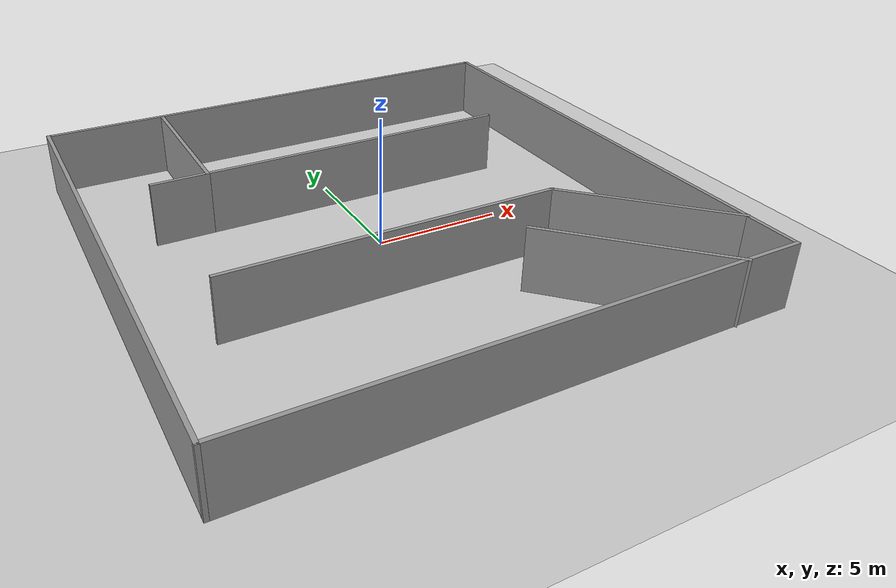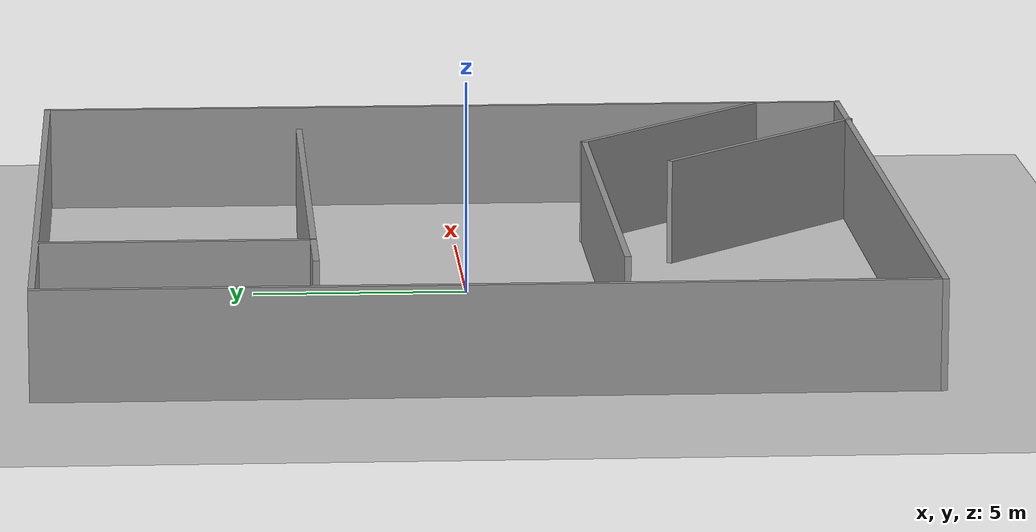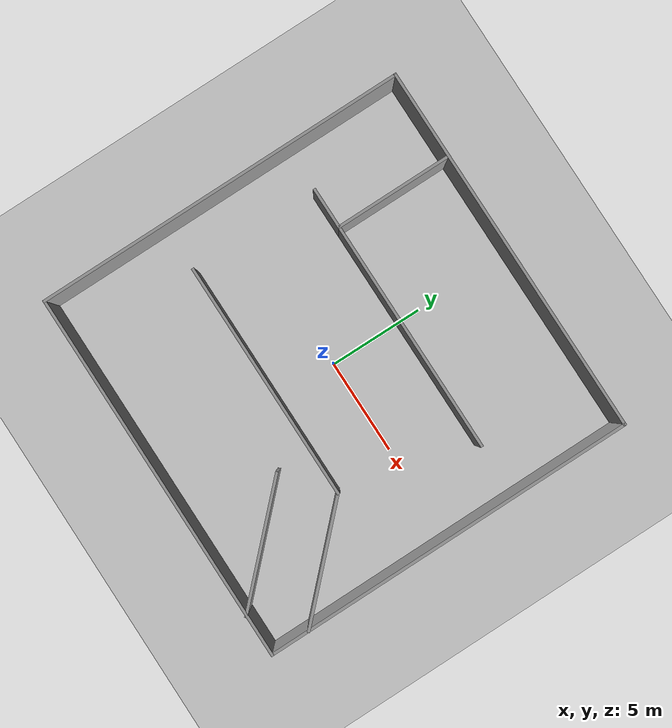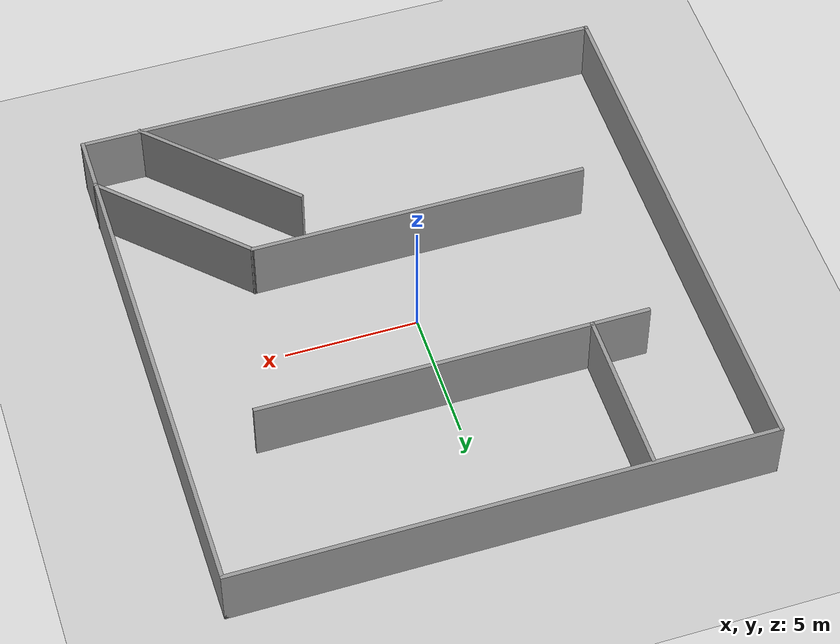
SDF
<?xml version="1.0" ?>

<sdf version="1.6">
	<world name="default">
		<!-- Uncomment this for tracking the robot -->
		<!-- Comment this for manually changing the camera-->
		<include>
			<uri>model://sun</uri>
            <pose>0 0 100 0 0 0</pose>
		</include>

		<include>
			<uri>model://ground_plane</uri>
		</include>

		<include>
			<uri>model://house_2_2</uri>
			<pose>0 0 0 0 0 0</pose>
		</include>

	</world>
</sdf>

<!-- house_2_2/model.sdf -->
<sdf version='1.6'>
  <model name='house_2'>
    <pose frame=''>0.007217 0.020634 0 0 -0 0</pose>
    <link name='Wall_10'>
      <collision name='Wall_10_Collision'>
        <geometry>
          <box>
            <size>20 0.15 2.5</size>
          </box>
        </geometry>
        <pose frame=''>0 0 1.25 0 -0 0</pose>
      </collision>
      <visual name='Wall_10_Visual'>
        <pose frame=''>0 0 1.25 0 -0 0</pose>
        <geometry>
          <box>
            <size>20 0.15 2.5</size>
          </box>
        </geometry>
        <material>
          <script>
            <uri>file://media/materials/scripts/gazebo.material</uri>
            <name>Gazebo/Grey</name>
          </script>
          <ambient>1 1 1 1</ambient>
        </material>
        <meta>
          <layer>0</layer>
        </meta>
      </visual>
      <pose frame=''>-0.014738 -9.89248 0 0 -0 3.14159</pose>
    </link>
    <link name='Wall_11'>
      <collision name='Wall_11_Collision'>
        <geometry>
          <box>
            <size>20 0.15 2.5</size>
          </box>
        </geometry>
        <pose frame=''>0 0 1.25 0 -0 0</pose>
      </collision>
      <visual name='Wall_11_Visual'>
        <pose frame=''>0 0 1.25 0 -0 0</pose>
        <geometry>
          <box>
            <size>20 0.15 2.5</size>
          </box>
        </geometry>
        <material>
          <script>
            <uri>file://media/materials/scripts/gazebo.material</uri>
            <name>Gazebo/Grey</name>
          </script>
          <ambient>1 1 1 1</ambient>
        </material>
        <meta>
          <layer>0</layer>
        </meta>
      </visual>
      <pose frame=''>-9.93974 0.032517 0 0 -0 1.5708</pose>
    </link>
    <link name='Wall_13'>
      <collision name='Wall_13_Collision'>
        <geometry>
          <box>
            <size>6.25 0.15 2.5</size>
          </box>
        </geometry>
        <pose frame=''>0 0 1.25 0 -0 0</pose>
      </collision>
      <visual name='Wall_13_Visual'>
        <pose frame=''>0 0 1.25 0 -0 0</pose>
        <geometry>
          <box>
            <size>6.25 0.15 2.5</size>
          </box>
        </geometry>
        <material>
          <script>
            <uri>file://media/materials/scripts/gazebo.material</uri>
            <name>Gazebo/Grey</name>
          </script>
          <ambient>1 1 1 1</ambient>
        </material>
        <meta>
          <layer>0</layer>
        </meta>
      </visual>
      <pose frame=''>-5.29533 6.78689 0 0 -0 -1.5708</pose>
    </link>
    <link name='Wall_14'>
      <collision name='Wall_14_Collision'>
        <geometry>
          <box>
            <size>2.25 0.15 2.5</size>
          </box>
        </geometry>
        <pose frame=''>0 0 1.25 0 -0 0</pose>
      </collision>
      <visual name='Wall_14_Visual'>
        <pose frame=''>0 0 1.25 0 -0 0</pose>
        <geometry>
          <box>
            <size>2.25 0.15 2.5</size>
          </box>
        </geometry>
        <material>
          <script>
            <uri>file://media/materials/scripts/gazebo.material</uri>
            <name>Gazebo/Grey</name>
          </script>
          <ambient>1 1 1 1</ambient>
        </material>
        <meta>
          <layer>0</layer>
        </meta>
      </visual>
      <pose frame=''>-6.34533 3.73689 0 0 -0 3.14159</pose>
    </link>
    <link name='Wall_16'>
      <collision name='Wall_16_Collision'>
        <geometry>
          <box>
            <size>7 0.15 2.5</size>
          </box>
        </geometry>
        <pose frame=''>0 0 1.25 0 -0 0</pose>
      </collision>
      <visual name='Wall_16_Visual'>
        <pose frame=''>0 0 1.25 0 -0 0</pose>
        <geometry>
          <box>
            <size>7 0.15 2.5</size>
          </box>
        </geometry>
        <material>
          <script>
            <uri>file://media/materials/scripts/gazebo.material</uri>
            <name>Gazebo/Grey</name>
          </script>
          <ambient>1 1 1 1</ambient>
        </material>
        <meta>
          <layer>0</layer>
        </meta>
      </visual>
      <pose frame=''>5.30021 -7.50461 0 0 -0 2.35619</pose>
    </link>
    <link name='Wall_18'>
      <collision name='Wall_18_Collision'>
        <geometry>
          <box>
            <size>6.75 0.15 2.5</size>
          </box>
        </geometry>
        <pose frame=''>0 0 1.25 0 -0 0</pose>
      </collision>
      <visual name='Wall_18_Visual'>
        <pose frame=''>0 0 1.25 0 -0 0</pose>
        <geometry>
          <box>
            <size>6.75 0.15 2.5</size>
          </box>
        </geometry>
        <material>
          <script>
            <uri>file://media/materials/scripts/gazebo.material</uri>
            <name>Gazebo/Grey</name>
          </script>
          <ambient>1 1 1 1</ambient>
        </material>
        <meta>
          <layer>0</layer>
        </meta>
      </visual>
      <pose frame=''>7.57522 -5.49942 0 0 -0 2.35619</pose>
    </link>
    <link name='Wall_20'>
      <collision name='Wall_20_Collision'>
        <geometry>
          <box>
            <size>12.5 0.15 2.5</size>
          </box>
        </geometry>
        <pose frame=''>0 0 1.25 0 -0 0</pose>
      </collision>
      <visual name='Wall_20_Visual'>
        <pose frame=''>0 0 1.25 0 -0 0</pose>
        <geometry>
          <box>
            <size>12.5 0.15 2.5</size>
          </box>
        </geometry>
        <material>
          <script>
            <uri>file://media/materials/scripts/gazebo.material</uri>
            <name>Gazebo/Grey</name>
          </script>
          <ambient>1 1 1 1</ambient>
        </material>
        <meta>
          <layer>0</layer>
        </meta>
      </visual>
      <pose frame=''>0.879671 3.73689 0 0 -0 0</pose>
    </link>
    <link name='Wall_22'>
      <collision name='Wall_22_Collision'>
        <geometry>
          <box>
            <size>12.75 0.15 2.5</size>
          </box>
        </geometry>
        <pose frame=''>0 0 1.25 0 -0 0</pose>
      </collision>
      <visual name='Wall_22_Visual'>
        <pose frame=''>0 0 1.25 0 -0 0</pose>
        <geometry>
          <box>
            <size>12.75 0.15 2.5</size>
          </box>
        </geometry>
        <material>
          <script>
            <uri>file://media/materials/scripts/gazebo.material</uri>
            <name>Gazebo/Grey</name>
          </script>
          <ambient>1 1 1 1</ambient>
        </material>
        <meta>
          <layer>0</layer>
        </meta>
      </visual>
      <pose frame=''>-1.05823 -3.16597 0 0 -0 3.14159</pose>
    </link>
    <link name='Wall_7'>
      <collision name='Wall_7_Collision'>
        <geometry>
          <box>
            <size>20 0.15 2.5</size>
          </box>
        </geometry>
        <pose frame=''>0 0 1.25 0 -0 0</pose>
      </collision>
      <visual name='Wall_7_Visual'>
        <pose frame=''>0 0 1.25 0 -0 0</pose>
        <geometry>
          <box>
            <size>20 0.15 2.5</size>
          </box>
        </geometry>
        <material>
          <script>
            <uri>file://media/materials/scripts/gazebo.material</uri>
            <name>Gazebo/Grey</name>
          </script>
          <ambient>1 1 1 1</ambient>
        </material>
        <meta>
          <layer>0</layer>
        </meta>
      </visual>
      <pose frame=''>-0.014738 9.95752 0 0 -0 0</pose>
    </link>
    <link name='Wall_9'>
      <collision name='Wall_9_Collision'>
        <geometry>
          <box>
            <size>20 0.15 2.5</size>
          </box>
        </geometry>
        <pose frame=''>0 0 1.25 0 -0 0</pose>
      </collision>
      <visual name='Wall_9_Visual'>
        <pose frame=''>0 0 1.25 0 -0 0</pose>
        <geometry>
          <box>
            <size>20 0.15 2.5</size>
          </box>
        </geometry>
        <material>
          <script>
            <uri>file://media/materials/scripts/gazebo.material</uri>
            <name>Gazebo/Grey</name>
          </script>
          <ambient>1 1 1 1</ambient>
        </material>
        <meta>
          <layer>0</layer>
        </meta>
      </visual>
      <pose frame=''>9.91026 0.032517 0 0 -0 -1.5708</pose>
    </link>
    <static>1</static>
  </model>
</sdf>
